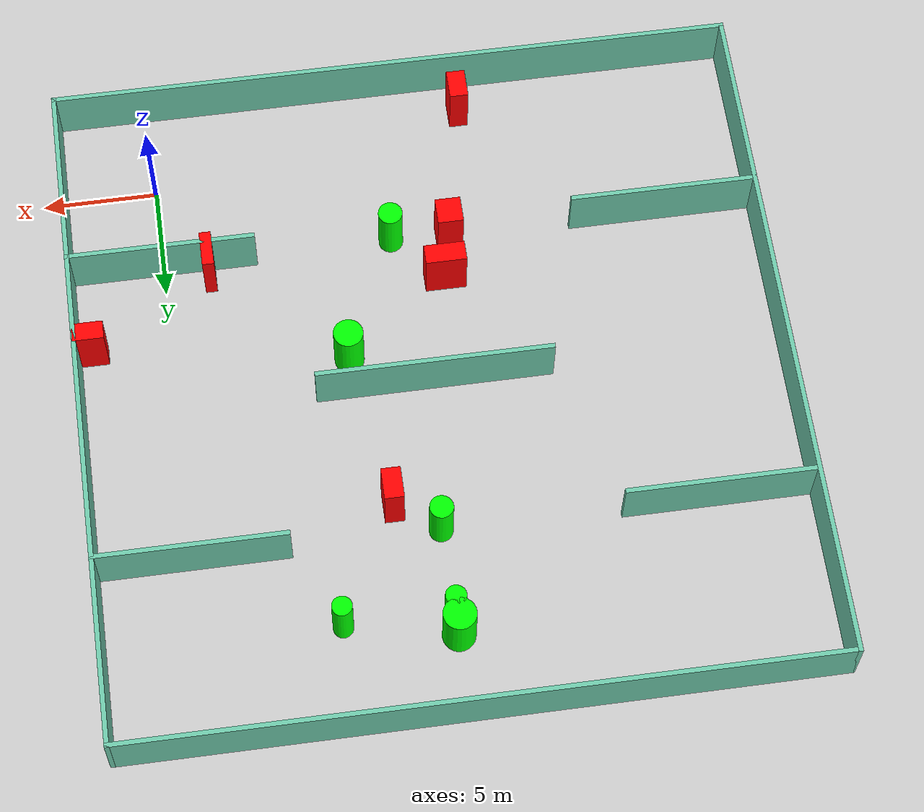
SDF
<sdf version="1.7">
 <world name="default">
  <light name="sun" type="directional">
   <pose>0 0 10 0 -0 0</pose>
   <diffuse>0.8 0.8 0.8 1</diffuse>
   <specular>0.2 0.2 0.2 1</specular>
   <attenuation>
    <range>1000</range>
    <constant>0.9</constant>
    <linear>0.01</linear>
    <quadratic>0.001</quadratic>
   </attenuation>
   <direction>-0.5 0.1 -0.9</direction>
   <spot><inner_angle>0</inner_angle><outer_angle>0</outer_angle><falloff>0</falloff></spot>
  </light>
  <model name="ground_plane">
   <static>1</static>
   <link name="link">
    <collision name="collision">
     <geometry><plane><normal>0 0 1</normal><size>100 100</size></plane></geometry>
     <surface>
      <contact><collide_bitmask>65535</collide_bitmask></contact>
      <friction><ode><mu>100</mu><mu2>50</mu2></ode></friction>
     </surface>
    </collision>
    <visual name="visual">
     <cast_shadows>0</cast_shadows>
     <geometry><plane><normal>0 0 1</normal><size>100 100</size></plane></geometry>
     <material>
      <script><uri>file://media/materials/scripts/gazebo.material</uri><name>Gazebo/Grey</name></script>
     </material>
    </visual>
   </link>
  </model>
  <gravity>0 0 -9.8</gravity>
  <magnetic_field>6e-06 2.3e-05 -4.2e-05</magnetic_field>
  <atmosphere type="adiabatic"/>
  <physics type="ode">
   <max_step_size>0.001</max_step_size>
   <real_time_factor>1</real_time_factor>
   <real_time_update_rate>1000</real_time_update_rate>
  </physics>
  <scene><ambient>0.4 0.4 0.4 1</ambient><background>0.7 0.7 0.7 1</background><shadows>1</shadows></scene>
  <spherical_coordinates>
   <surface_model>EARTH_WGS84</surface_model>
   <latitude_deg>0</latitude_deg>
   <longitude_deg>0</longitude_deg>
   <elevation>0</elevation>
   <heading_deg>0</heading_deg>
  </spherical_coordinates>
  <model name="my_base_walls">
   <link name="Wall_10">
    <collision name="Wall_10_Collision">
     <geometry><box><size>8.2 0.2 2.5</size></box></geometry>
     <pose>0 0 1.25 0 -0 0</pose>
    </collision>
    <visual name="Wall_10_Visual">
     <pose>0 0 1.25 0 -0 0</pose>
     <geometry><box><size>8.2 0.2 2.5</size></box></geometry>
     <material>
      <script><uri>file://media/materials/scripts/gazebo.material</uri><name>Gazebo/Grey</name></script>
      <ambient>0.435294 0.796078 0.67451 1</ambient>
     </material>
     <meta><layer>0</layer></meta>
    </visual>
    <pose>-11 -7 0 0 -0 0</pose>
   </link>
   <link name="Wall_12">
    <collision name="Wall_12_Collision">
     <geometry><box><size>8.2 0.2 2.5</size></box></geometry>
     <pose>0 0 1.25 0 -0 0</pose>
    </collision>
    <visual name="Wall_12_Visual">
     <pose>0 0 1.25 0 -0 0</pose>
     <geometry><box><size>8.2 0.2 2.5</size></box></geometry>
     <material>
      <script><uri>file://media/materials/scripts/gazebo.material</uri><name>Gazebo/Grey</name></script>
      <ambient>0.435294 0.796078 0.67451 1</ambient>
     </material>
     <meta><layer>0</layer></meta>
    </visual>
    <pose>-11 7 0 0 -0 0</pose>
   </link>
   <link name="Wall_14">
    <collision name="Wall_14_Collision">
     <geometry><box><size>8.2 0.2 2.5</size></box></geometry>
     <pose>0 0 1.25 0 -0 0</pose>
    </collision>
    <visual name="Wall_14_Visual">
     <pose>0 0 1.25 0 -0 0</pose>
     <geometry><box><size>8.2 0.2 2.5</size></box></geometry>
     <material>
      <script><uri>file://media/materials/scripts/gazebo.material</uri><name>Gazebo/Grey</name></script>
      <ambient>0.435294 0.796078 0.67451 1</ambient>
     </material>
     <meta><layer>0</layer></meta>
    </visual>
    <pose>11 7 0 0 -0 3.14159</pose>
   </link>
   <link name="Wall_16">
    <collision name="Wall_16_Collision">
     <geometry><box><size>10.2 0.2 2.5</size></box></geometry>
     <pose>0 0 1.25 0 -0 0</pose>
    </collision>
    <visual name="Wall_16_Visual">
     <pose>0 0 1.25 0 -0 0</pose>
     <geometry><box><size>10.2 0.2 2.5</size></box></geometry>
     <material>
      <script><uri>file://media/materials/scripts/gazebo.material</uri><name>Gazebo/Grey</name></script>
      <ambient>0.435294 0.796078 0.67451 1</ambient>
     </material>
     <meta><layer>0</layer></meta>
    </visual>
    <pose>0 0 0 0 -0 3.14159</pose>
   </link>
   <link name="Wall_2">
    <collision name="Wall_2_Collision">
     <geometry><box><size>30.2 0.2 2.5</size></box></geometry>
     <pose>0 0 1.25 0 -0 0</pose>
    </collision>
    <visual name="Wall_2_Visual">
     <pose>0 0 1.25 0 -0 0</pose>
     <geometry><box><size>30.2 0.2 2.5</size></box></geometry>
     <material>
      <script><uri>file://media/materials/scripts/gazebo.material</uri><name>Gazebo/Grey</name></script>
      <ambient>0.435294 0.796078 0.67451 1</ambient>
     </material>
     <meta><layer>0</layer></meta>
    </visual>
    <pose>0 -15 0 0 -0 3.14159</pose>
   </link>
   <link name="Wall_3">
    <collision name="Wall_3_Collision">
     <geometry><box><size>30.2 0.2 2.5</size></box></geometry>
     <pose>0 0 1.25 0 -0 0</pose>
    </collision>
    <visual name="Wall_3_Visual">
     <pose>0 0 1.25 0 -0 0</pose>
     <geometry><box><size>30.2 0.2 2.5</size></box></geometry>
     <material>
      <script><uri>file://media/materials/scripts/gazebo.material</uri><name>Gazebo/Grey</name></script>
      <ambient>0.435294 0.796078 0.67451 1</ambient>
     </material>
     <meta><layer>0</layer></meta>
    </visual>
    <pose>-15 0 0 0 -0 1.5708</pose>
   </link>
   <link name="Wall_4">
    <collision name="Wall_4_Collision">
     <geometry><box><size>30.2 0.2 2.5</size></box></geometry>
     <pose>0 0 1.25 0 -0 0</pose>
    </collision>
    <visual name="Wall_4_Visual">
     <pose>0 0 1.25 0 -0 0</pose>
     <geometry><box><size>30.2 0.2 2.5</size></box></geometry>
     <material>
      <script><uri>file://media/materials/scripts/gazebo.material</uri><name>Gazebo/Grey</name></script>
      <ambient>0.435294 0.796078 0.67451 1</ambient>
     </material>
     <meta><layer>0</layer></meta>
    </visual>
    <pose>0 15 0 0 -0 0</pose>
   </link>
   <link name="Wall_6">
    <collision name="Wall_6_Collision">
     <geometry><box><size>30.2 0.2 2.5</size></box></geometry>
     <pose>0 0 1.25 0 -0 0</pose>
    </collision>
    <visual name="Wall_6_Visual">
     <pose>0 0 1.25 0 -0 0</pose>
     <geometry><box><size>30.2 0.2 2.5</size></box></geometry>
     <material>
      <script><uri>file://media/materials/scripts/gazebo.material</uri><name>Gazebo/Grey</name></script>
      <ambient>0.435294 0.796078 0.67451 1</ambient>
     </material>
     <meta><layer>0</layer></meta>
    </visual>
    <pose>15 0 0 0 -0 1.5708</pose>
   </link>
   <link name="Wall_8">
    <collision name="Wall_8_Collision">
     <geometry><box><size>8.2 0.2 2.5</size></box></geometry>
     <pose>0 0 1.25 0 -0 0</pose>
    </collision>
    <visual name="Wall_8_Visual">
     <pose>0 0 1.25 0 -0 0</pose>
     <geometry><box><size>8.2 0.2 2.5</size></box></geometry>
     <material>
      <script><uri>file://media/materials/scripts/gazebo.material</uri><name>Gazebo/Grey</name></script>
      <ambient>0.435294 0.796078 0.67451 1</ambient>
     </material>
     <meta><layer>0</layer></meta>
    </visual>
    <pose>11 -7 0 0 -0 3.14159</pose>
   </link>
   <static>1</static>
   <pose>-11 11 0 0 -0 0</pose>
  </model>
  <model name="cylinder1">
   <static>1</static>
   <link name="link">
    <inertial>
     <mass>1</mass>
     <inertia><ixx>0.5</ixx><ixy>0</ixy><ixz>0</ixz><iyy>0.5</iyy><iyz>0</iyz><izz>1</izz></inertia>
    </inertial>
    <collision name="collision">
     <geometry><cylinder><radius>0.5284883927333887</radius><length>2.5</length></cylinder></geometry>
    </collision>
    <visual name="visual">
     <geometry><cylinder><radius>0.5284883927333887</radius><length>2.5</length></cylinder></geometry>
     <material>
      <ambient>0 1 0 1</ambient>
      <diffuse>0 1 0 1</diffuse>
      <specular>0.1 0.1 0.1 1</specular>
      <emissive>0 0 0 0</emissive>
     </material>
    </visual>
   </link>
   <pose>-10.030478640657556 3.715243754354475 1.25 0 0 0</pose>
  </model>
  <model name="cylinder2">
   <static>1</static>
   <link name="link">
    <inertial>
     <mass>1</mass>
     <inertia><ixx>0.5</ixx><ixy>0</ixy><ixz>0</ixz><iyy>0.5</iyy><iyz>0</iyz><izz>1</izz></inertia>
    </inertial>
    <collision name="collision">
     <geometry><cylinder><radius>0.6401482323229203</radius><length>2.5</length></cylinder></geometry>
    </collision>
    <visual name="visual">
     <geometry><cylinder><radius>0.6401482323229203</radius><length>2.5</length></cylinder></geometry>
     <material>
      <ambient>0 1 0 1</ambient>
      <diffuse>0 1 0 1</diffuse>
      <specular>0.1 0.1 0.1 1</specular>
      <emissive>0 0 0 0</emissive>
     </material>
    </visual>
   </link>
   <pose>-7.528396421436767 9.27018861891504 1.25 0 0 0</pose>
  </model>
  <model name="cylinder3">
   <static>1</static>
   <link name="link">
    <inertial>
     <mass>1</mass>
     <inertia><ixx>0.5</ixx><ixy>0</ixy><ixz>0</ixz><iyy>0.5</iyy><iyz>0</iyz><izz>1</izz></inertia>
    </inertial>
    <collision name="collision">
     <geometry><cylinder><radius>0.5062003716589817</radius><length>2.5</length></cylinder></geometry>
    </collision>
    <visual name="visual">
     <geometry><cylinder><radius>0.5062003716589817</radius><length>2.5</length></cylinder></geometry>
     <material>
      <ambient>0 1 0 1</ambient>
      <diffuse>0 1 0 1</diffuse>
      <specular>0.1 0.1 0.1 1</specular>
      <emissive>0 0 0 0</emissive>
     </material>
    </visual>
   </link>
   <pose>-10.345845778050514 17.70400147527054 1.25 0 0 0</pose>
  </model>
  <model name="cylinder4">
   <static>1</static>
   <link name="link">
    <inertial>
     <mass>1</mass>
     <inertia><ixx>0.5</ixx><ixy>0</ixy><ixz>0</ixz><iyy>0.5</iyy><iyz>0</iyz><izz>1</izz></inertia>
    </inertial>
    <collision name="collision">
     <geometry><cylinder><radius>0.4292805555481943</radius><length>2.5</length></cylinder></geometry>
    </collision>
    <visual name="visual">
     <geometry><cylinder><radius>0.4292805555481943</radius><length>2.5</length></cylinder></geometry>
     <material>
      <ambient>0 1 0 1</ambient>
      <diffuse>0 1 0 1</diffuse>
      <specular>0.1 0.1 0.1 1</specular>
      <emissive>0 0 0 0</emissive>
     </material>
    </visual>
   </link>
   <pose>-5.7993943341112395 21.462947829483532 1.25 0 0 0</pose>
  </model>
  <model name="cylinder5">
   <static>1</static>
   <link name="link">
    <inertial>
     <mass>1</mass>
     <inertia><ixx>0.5</ixx><ixy>0</ixy><ixz>0</ixz><iyy>0.5</iyy><iyz>0</iyz><izz>1</izz></inertia>
    </inertial>
    <collision name="collision">
     <geometry><cylinder><radius>0.6979515099079941</radius><length>2.5</length></cylinder></geometry>
    </collision>
    <visual name="visual">
     <geometry><cylinder><radius>0.6979515099079941</radius><length>2.5</length></cylinder></geometry>
     <material>
      <ambient>0 1 0 1</ambient>
      <diffuse>0 1 0 1</diffuse>
      <specular>0.1 0.1 0.1 1</specular>
      <emissive>0 0 0 0</emissive>
     </material>
    </visual>
   </link>
   <pose>-10.442184251939505 22.40004066102411 1.25 0 0 0</pose>
  </model>
  <model name="cylinder6">
   <static>1</static>
   <link name="link">
    <inertial>
     <mass>1</mass>
     <inertia><ixx>0.5</ixx><ixy>0</ixy><ixz>0</ixz><iyy>0.5</iyy><iyz>0</iyz><izz>1</izz></inertia>
    </inertial>
    <collision name="collision">
     <geometry><cylinder><radius>0.44151259579578306</radius><length>2.5</length></cylinder></geometry>
    </collision>
    <visual name="visual">
     <geometry><cylinder><radius>0.44151259579578306</radius><length>2.5</length></cylinder></geometry>
     <material>
      <ambient>0 1 0 1</ambient>
      <diffuse>0 1 0 1</diffuse>
      <specular>0.1 0.1 0.1 1</specular>
      <emissive>0 0 0 0</emissive>
     </material>
    </visual>
   </link>
   <pose>-10.395009021460602 21.59996632717957 1.25 0 0 0</pose>
  </model>
  <model name="box1">
   <static>1</static>
   <link name="link">
    <inertial>
     <mass>1</mass>
     <inertia><ixx>0.083</ixx><ixy>0</ixy><ixz>0</ixz><iyy>0.083</iyy><iyz>0</iyz><izz>0.083</izz></inertia>
    </inertial>
    <collision name="collision">
     <geometry><box><size>1.114173380238865 1.1640460335837461 2.5</size></box></geometry>
    </collision>
    <visual name="visual">
     <geometry><box><size>1.114173380238865 1.1640460335837461 2.5</size></box></geometry>
     <material>
      <ambient>1 0 0 1</ambient>
      <diffuse>1 0 0 1</diffuse>
      <specular>0.1 0.1 0.1 1</specular>
      <emissive>0 0 0 0</emissive>
     </material>
    </visual>
    <sensor name="my_contact" type="contact">
     <contact><collision>box_collision</collision><topic>__default_topic__</topic></contact>
    </sensor>
   </link>
   <pose>-12.574903157122343 3.89555845765652 1.25 0 0 0</pose>
  </model>
  <model name="box2">
   <static>1</static>
   <link name="link">
    <inertial>
     <mass>1</mass>
     <inertia><ixx>0.083</ixx><ixy>0</ixy><ixz>0</ixz><iyy>0.083</iyy><iyz>0</iyz><izz>0.083</izz></inertia>
    </inertial>
    <collision name="collision">
     <geometry><box><size>1.334311616966152 0.8123647359354939 2.5</size></box></geometry>
    </collision>
    <visual name="visual">
     <geometry><box><size>1.334311616966152 0.8123647359354939 2.5</size></box></geometry>
     <material>
      <ambient>1 0 0 1</ambient>
      <diffuse>1 0 0 1</diffuse>
      <specular>0.1 0.1 0.1 1</specular>
      <emissive>0 0 0 0</emissive>
     </material>
    </visual>
    <sensor name="my_contact" type="contact">
     <contact><collision>box_collision</collision><topic>__default_topic__</topic></contact>
    </sensor>
   </link>
   <pose>3.379483921204802 7.71242867910728 1.25 0 0 0</pose>
  </model>
  <model name="box3">
   <static>1</static>
   <link name="link">
    <inertial>
     <mass>1</mass>
     <inertia><ixx>0.083</ixx><ixy>0</ixy><ixz>0</ixz><iyy>0.083</iyy><iyz>0</iyz><izz>0.083</izz></inertia>
    </inertial>
    <collision name="collision">
     <geometry><box><size>0.8171239628936284 1.3034293644138162 2.5</size></box></geometry>
    </collision>
    <visual name="visual">
     <geometry><box><size>0.8171239628936284 1.3034293644138162 2.5</size></box></geometry>
     <material>
      <ambient>1 0 0 1</ambient>
      <diffuse>1 0 0 1</diffuse>
      <specular>0.1 0.1 0.1 1</specular>
      <emissive>0 0 0 0</emissive>
     </material>
    </visual>
    <sensor name="my_contact" type="contact">
     <contact><collision>box_collision</collision><topic>__default_topic__</topic></contact>
    </sensor>
   </link>
   <pose>-13.8179355260494 -2.483542870249231 1.25 0 0 0</pose>
  </model>
  <model name="box4">
   <static>1</static>
   <link name="link">
    <inertial>
     <mass>1</mass>
     <inertia><ixx>0.083</ixx><ixy>0</ixy><ixz>0</ixz><iyy>0.083</iyy><iyz>0</iyz><izz>0.083</izz></inertia>
    </inertial>
    <collision name="collision">
     <geometry><box><size>1.7729402370817222 0.872850503966045 2.5</size></box></geometry>
    </collision>
    <visual name="visual">
     <geometry><box><size>1.7729402370817222 0.872850503966045 2.5</size></box></geometry>
     <material>
      <ambient>1 0 0 1</ambient>
      <diffuse>1 0 0 1</diffuse>
      <specular>0.1 0.1 0.1 1</specular>
      <emissive>0 0 0 0</emissive>
     </material>
    </visual>
    <sensor name="my_contact" type="contact">
     <contact><collision>box_collision</collision><topic>__default_topic__</topic></contact>
    </sensor>
   </link>
   <pose>-12.123450716541049 5.949714585395382 1.25 0 0 0</pose>
  </model>
  <model name="box5">
   <static>1</static>
   <link name="link">
    <inertial>
     <mass>1</mass>
     <inertia><ixx>0.083</ixx><ixy>0</ixy><ixz>0</ixz><iyy>0.083</iyy><iyz>0</iyz><izz>0.083</izz></inertia>
    </inertial>
    <collision name="collision">
     <geometry><box><size>0.5043993337756835 1.5820710723060958 2.5</size></box></geometry>
    </collision>
    <visual name="visual">
     <geometry><box><size>0.5043993337756835 1.5820710723060958 2.5</size></box></geometry>
     <material>
      <ambient>1 0 0 1</ambient>
      <diffuse>1 0 0 1</diffuse>
      <specular>0.1 0.1 0.1 1</specular>
      <emissive>0 0 0 0</emissive>
     </material>
    </visual>
    <sensor name="my_contact" type="contact">
     <contact><collision>box_collision</collision><topic>__default_topic__</topic></contact>
    </sensor>
   </link>
   <pose>-1.982002334263452 4.38836154032332 1.25 0 0 0</pose>
  </model>
  <model name="box6">
   <static>1</static>
   <link name="link">
    <inertial>
     <mass>1</mass>
     <inertia><ixx>0.083</ixx><ixy>0</ixy><ixz>0</ixz><iyy>0.083</iyy><iyz>0</iyz><izz>0.083</izz></inertia>
    </inertial>
    <collision name="collision">
     <geometry><box><size>0.8293416422744349 1.3629322391538246 2.5</size></box></geometry>
    </collision>
    <visual name="visual">
     <geometry><box><size>0.8293416422744349 1.3629322391538246 2.5</size></box></geometry>
     <material>
      <ambient>1 0 0 1</ambient>
      <diffuse>1 0 0 1</diffuse>
      <specular>0.1 0.1 0.1 1</specular>
      <emissive>0 0 0 0</emissive>
     </material>
    </visual>
    <sensor name="my_contact" type="contact">
     <contact><collision>box_collision</collision><topic>__default_topic__</topic></contact>
    </sensor>
   </link>
   <pose>-8.494146253806093 16.367578147074223 1.25 0 0 0</pose>
  </model>
 </world>
</sdf>
